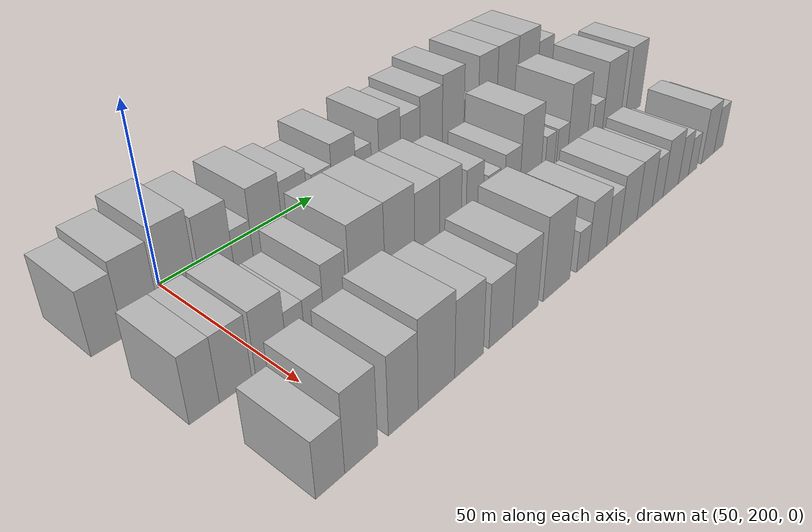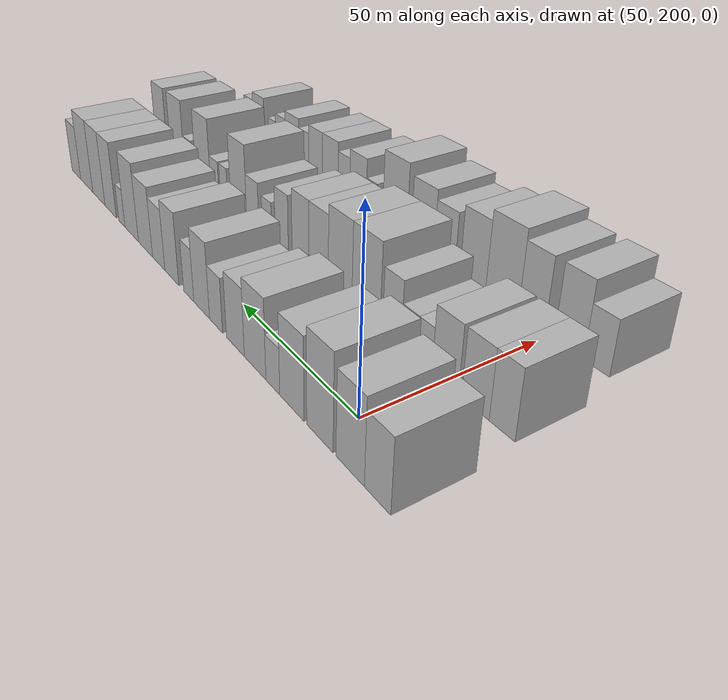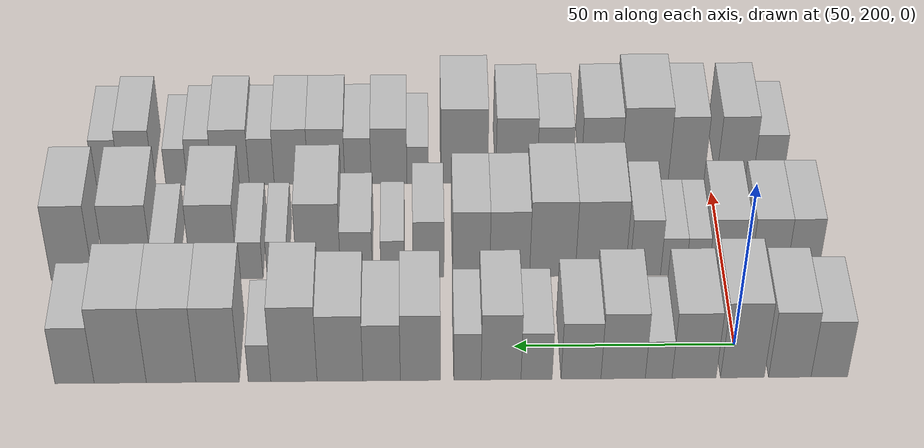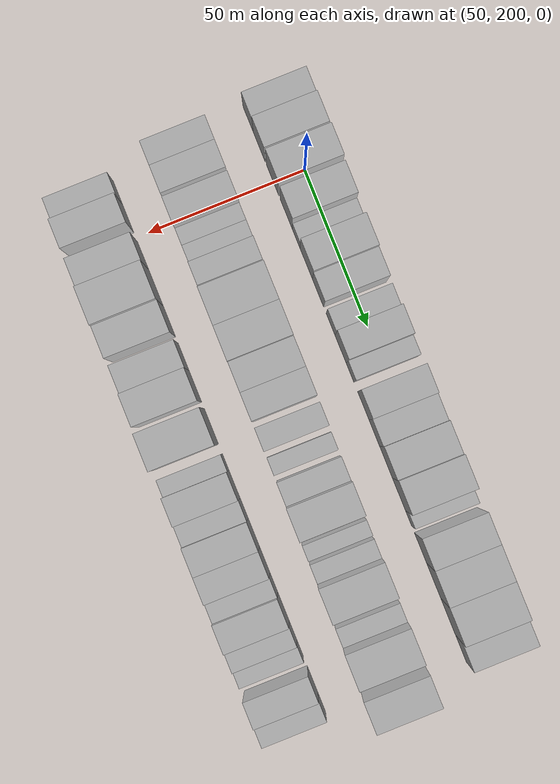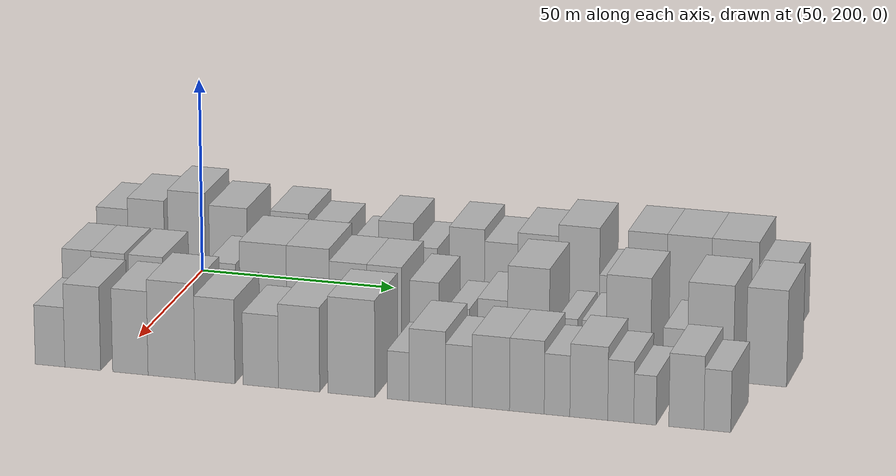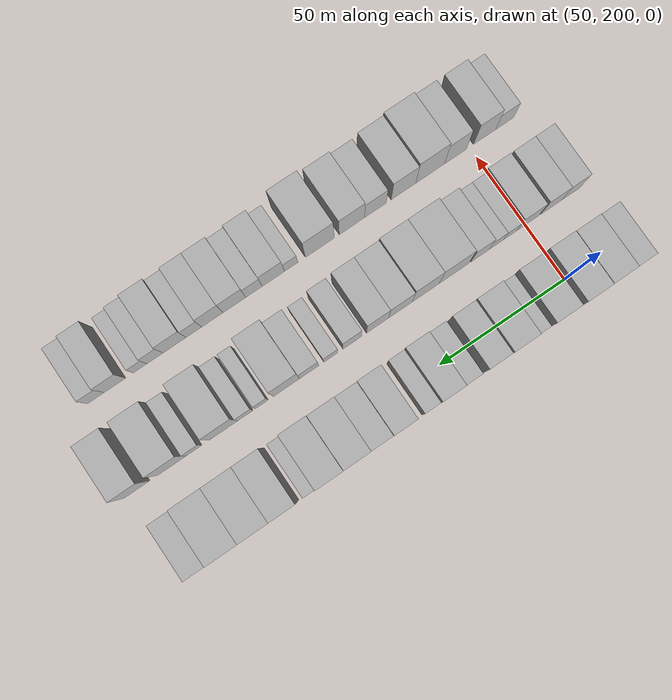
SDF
<sdf version="1.6">
 <world name="default">
  <model name="building_59">
   <static>1</static>
   <pose>50.0000 179.7902 0 0.000000 0.000000 0.000000</pose>
   <link name="link">
    <pose>0 0 9.00 0 0 0</pose>
    <collision name="collision"><geometry><box><size>20.0000 8.1824 18.0000</size></box></geometry></collision>
    <visual name="visual">
     <cast_shadows>0</cast_shadows>
     <geometry><box><size>20.0000 8.1824 18.0000</size></box></geometry>
     <material>
      <script>
       <uri>model://HANNAS_wall/materials/scripts</uri>
       <uri>model://HANNAS_wall/materials/textures</uri>
       <name>vrc/HANNAS_wall</name>
      </script>
     </material>
    </visual>
   </link>
  </model>
  <model name="building_60">
   <static>1</static>
   <pose>50.0000 188.6408 0 0.000000 0.000000 0.000000</pose>
   <link name="link">
    <pose>0 0 10.50 0 0 0</pose>
    <collision name="collision"><geometry><box><size>20.0000 9.5188 21.0000</size></box></geometry></collision>
    <visual name="visual">
     <cast_shadows>0</cast_shadows>
     <geometry><box><size>20.0000 9.5188 21.0000</size></box></geometry>
     <material>
      <script>
       <uri>model://HANNAS_wall/materials/scripts</uri>
       <uri>model://HANNAS_wall/materials/textures</uri>
       <name>vrc/HANNAS_wall</name>
      </script>
     </material>
    </visual>
   </link>
  </model>
  <model name="building_61">
   <static>1</static>
   <pose>50.0000 199.2858 0 0.000000 0.000000 0.000000</pose>
   <link name="link">
    <pose>0 0 12.00 0 0 0</pose>
    <collision name="collision"><geometry><box><size>20.0000 9.7712 24.0000</size></box></geometry></collision>
    <visual name="visual">
     <cast_shadows>0</cast_shadows>
     <geometry><box><size>20.0000 9.7712 24.0000</size></box></geometry>
     <material>
      <script>
       <uri>model://HANNAS_wall/materials/scripts</uri>
       <uri>model://HANNAS_wall/materials/textures</uri>
       <name>vrc/HANNAS_wall</name>
      </script>
     </material>
    </visual>
   </link>
  </model>
  <model name="building_62">
   <static>1</static>
   <pose>50.0000 210.1084 0 0.000000 0.000000 0.000000</pose>
   <link name="link">
    <pose>0 0 10.50 0 0 0</pose>
    <collision name="collision"><geometry><box><size>20.0000 9.8740 21.0000</size></box></geometry></collision>
    <visual name="visual">
     <cast_shadows>0</cast_shadows>
     <geometry><box><size>20.0000 9.8740 21.0000</size></box></geometry>
     <material>
      <script>
       <uri>model://HANNAS_wall/materials/scripts</uri>
       <uri>model://HANNAS_wall/materials/textures</uri>
       <name>vrc/HANNAS_wall</name>
      </script>
     </material>
    </visual>
   </link>
  </model>
  <model name="building_63">
   <static>1</static>
   <pose>50.0000 218.0400 0 0.000000 0.000000 0.000000</pose>
   <link name="link">
    <pose>0 0 6.00 0 0 0</pose>
    <collision name="collision"><geometry><box><size>20.0000 5.9892 12.0000</size></box></geometry></collision>
    <visual name="visual">
     <cast_shadows>0</cast_shadows>
     <geometry><box><size>20.0000 5.9892 12.0000</size></box></geometry>
     <material>
      <script>
       <uri>model://HANNAS_wall/materials/scripts</uri>
       <uri>model://HANNAS_wall/materials/textures</uri>
       <name>vrc/HANNAS_wall</name>
      </script>
     </material>
    </visual>
   </link>
  </model>
  <model name="building_64">
   <static>1</static>
   <pose>50.0000 225.9972 0 0.000000 0.000000 0.000000</pose>
   <link name="link">
    <pose>0 0 10.50 0 0 0</pose>
    <collision name="collision"><geometry><box><size>20.0000 9.9251 21.0000</size></box></geometry></collision>
    <visual name="visual">
     <cast_shadows>0</cast_shadows>
     <geometry><box><size>20.0000 9.9251 21.0000</size></box></geometry>
     <material>
      <script>
       <uri>model://HANNAS_wall/materials/scripts</uri>
       <uri>model://HANNAS_wall/materials/textures</uri>
       <name>vrc/HANNAS_wall</name>
      </script>
     </material>
    </visual>
   </link>
  </model>
  <model name="building_65">
   <static>1</static>
   <pose>50.0000 235.4195 0 0.000000 0.000000 0.000000</pose>
   <link name="link">
    <pose>0 0 9.00 0 0 0</pose>
    <collision name="collision"><geometry><box><size>20.0000 8.9195 18.0000</size></box></geometry></collision>
    <visual name="visual">
     <cast_shadows>0</cast_shadows>
     <geometry><box><size>20.0000 8.9195 18.0000</size></box></geometry>
     <material>
      <script>
       <uri>model://HANNAS_wall/materials/scripts</uri>
       <uri>model://HANNAS_wall/materials/textures</uri>
       <name>vrc/HANNAS_wall</name>
      </script>
     </material>
    </visual>
   </link>
  </model>
  <model name="building_66">
   <static>1</static>
   <pose>50.0000 245.3651 0 0.000000 0.000000 0.000000</pose>
   <link name="link">
    <pose>0 0 7.50 0 0 0</pose>
    <collision name="collision"><geometry><box><size>20.0000 6.9717 15.0000</size></box></geometry></collision>
    <visual name="visual">
     <cast_shadows>0</cast_shadows>
     <geometry><box><size>20.0000 6.9717 15.0000</size></box></geometry>
     <material>
      <script>
       <uri>model://HANNAS_wall/materials/scripts</uri>
       <uri>model://HANNAS_wall/materials/textures</uri>
       <name>vrc/HANNAS_wall</name>
      </script>
     </material>
    </visual>
   </link>
  </model>
  <model name="building_67">
   <static>1</static>
   <pose>50.0000 253.3187 0 0.000000 0.000000 0.000000</pose>
   <link name="link">
    <pose>0 0 10.50 0 0 0</pose>
    <collision name="collision"><geometry><box><size>20.0000 8.9354 21.0000</size></box></geometry></collision>
    <visual name="visual">
     <cast_shadows>0</cast_shadows>
     <geometry><box><size>20.0000 8.9354 21.0000</size></box></geometry>
     <material>
      <script>
       <uri>model://HANNAS_wall/materials/scripts</uri>
       <uri>model://HANNAS_wall/materials/textures</uri>
       <name>vrc/HANNAS_wall</name>
      </script>
     </material>
    </visual>
   </link>
  </model>
  <model name="building_68">
   <static>1</static>
   <pose>50.0000 260.8316 0 0.000000 0.000000 0.000000</pose>
   <link name="link">
    <pose>0 0 7.50 0 0 0</pose>
    <collision name="collision"><geometry><box><size>20.0000 6.0904 15.0000</size></box></geometry></collision>
    <visual name="visual">
     <cast_shadows>0</cast_shadows>
     <geometry><box><size>20.0000 6.0904 15.0000</size></box></geometry>
     <material>
      <script>
       <uri>model://HANNAS_wall/materials/scripts</uri>
       <uri>model://HANNAS_wall/materials/textures</uri>
       <name>vrc/HANNAS_wall</name>
      </script>
     </material>
    </visual>
   </link>
  </model>
  <model name="building_69">
   <static>1</static>
   <pose>50.0000 271.3402 0 0.000000 0.000000 0.000000</pose>
   <link name="link">
    <pose>0 0 10.50 0 0 0</pose>
    <collision name="collision"><geometry><box><size>20.0000 8.9268 21.0000</size></box></geometry></collision>
    <visual name="visual">
     <cast_shadows>0</cast_shadows>
     <geometry><box><size>20.0000 8.9268 21.0000</size></box></geometry>
     <material>
      <script>
       <uri>model://HANNAS_wall/materials/scripts</uri>
       <uri>model://HANNAS_wall/materials/textures</uri>
       <name>vrc/HANNAS_wall</name>
      </script>
     </material>
    </visual>
   </link>
  </model>
  <model name="building_70">
   <static>1</static>
   <pose>50.0000 279.9885 0 0.000000 0.000000 0.000000</pose>
   <link name="link">
    <pose>0 0 9.00 0 0 0</pose>
    <collision name="collision"><geometry><box><size>20.0000 8.3698 18.0000</size></box></geometry></collision>
    <visual name="visual">
     <cast_shadows>0</cast_shadows>
     <geometry><box><size>20.0000 8.3698 18.0000</size></box></geometry>
     <material>
      <script>
       <uri>model://HANNAS_wall/materials/scripts</uri>
       <uri>model://HANNAS_wall/materials/textures</uri>
       <name>vrc/HANNAS_wall</name>
      </script>
     </material>
    </visual>
   </link>
  </model>
  <model name="building_71">
   <static>1</static>
   <pose>50.0000 289.2842 0 0.000000 0.000000 0.000000</pose>
   <link name="link">
    <pose>0 0 10.50 0 0 0</pose>
    <collision name="collision"><geometry><box><size>20.0000 10.2215 21.0000</size></box></geometry></collision>
    <visual name="visual">
     <cast_shadows>0</cast_shadows>
     <geometry><box><size>20.0000 10.2215 21.0000</size></box></geometry>
     <material>
      <script>
       <uri>model://HANNAS_wall/materials/scripts</uri>
       <uri>model://HANNAS_wall/materials/textures</uri>
       <name>vrc/HANNAS_wall</name>
      </script>
     </material>
    </visual>
   </link>
  </model>
  <model name="building_72">
   <static>1</static>
   <pose>50.0000 299.5635 0 0.000000 0.000000 0.000000</pose>
   <link name="link">
    <pose>0 0 12.00 0 0 0</pose>
    <collision name="collision"><geometry><box><size>20.0000 10.3371 24.0000</size></box></geometry></collision>
    <visual name="visual">
     <cast_shadows>0</cast_shadows>
     <geometry><box><size>20.0000 10.3371 24.0000</size></box></geometry>
     <material>
      <script>
       <uri>model://HANNAS_wall/materials/scripts</uri>
       <uri>model://HANNAS_wall/materials/textures</uri>
       <name>vrc/HANNAS_wall</name>
      </script>
     </material>
    </visual>
   </link>
  </model>
  <model name="building_73">
   <static>1</static>
   <pose>50.0000 307.2502 0 0.000000 0.000000 0.000000</pose>
   <link name="link">
    <pose>0 0 6.00 0 0 0</pose>
    <collision name="collision"><geometry><box><size>20.0000 5.0363 12.0000</size></box></geometry></collision>
    <visual name="visual">
     <cast_shadows>0</cast_shadows>
     <geometry><box><size>20.0000 5.0363 12.0000</size></box></geometry>
     <material>
      <script>
       <uri>model://HANNAS_wall/materials/scripts</uri>
       <uri>model://HANNAS_wall/materials/textures</uri>
       <name>vrc/HANNAS_wall</name>
      </script>
     </material>
    </visual>
   </link>
  </model>
  <model name="building_74">
   <static>1</static>
   <pose>50.0000 316.6212 0 0.000000 0.000000 0.000000</pose>
   <link name="link">
    <pose>0 0 12.00 0 0 0</pose>
    <collision name="collision"><geometry><box><size>20.0000 9.7057 24.0000</size></box></geometry></collision>
    <visual name="visual">
     <cast_shadows>0</cast_shadows>
     <geometry><box><size>20.0000 9.7057 24.0000</size></box></geometry>
     <material>
      <script>
       <uri>model://HANNAS_wall/materials/scripts</uri>
       <uri>model://HANNAS_wall/materials/textures</uri>
       <name>vrc/HANNAS_wall</name>
      </script>
     </material>
    </visual>
   </link>
  </model>
  <model name="building_75">
   <static>1</static>
   <pose>50.0000 326.9900 0 0.000000 0.000000 0.000000</pose>
   <link name="link">
    <pose>0 0 12.00 0 0 0</pose>
    <collision name="collision"><geometry><box><size>20.0000 11.0320 24.0000</size></box></geometry></collision>
    <visual name="visual">
     <cast_shadows>0</cast_shadows>
     <geometry><box><size>20.0000 11.0320 24.0000</size></box></geometry>
     <material>
      <script>
       <uri>model://HANNAS_wall/materials/scripts</uri>
       <uri>model://HANNAS_wall/materials/textures</uri>
       <name>vrc/HANNAS_wall</name>
      </script>
     </material>
    </visual>
   </link>
  </model>
  <model name="building_76">
   <static>1</static>
   <pose>50.0000 338.3244 0 0.000000 0.000000 0.000000</pose>
   <link name="link">
    <pose>0 0 12.00 0 0 0</pose>
    <collision name="collision"><geometry><box><size>20.0000 11.6367 24.0000</size></box></geometry></collision>
    <visual name="visual">
     <cast_shadows>0</cast_shadows>
     <geometry><box><size>20.0000 11.6367 24.0000</size></box></geometry>
     <material>
      <script>
       <uri>model://HANNAS_wall/materials/scripts</uri>
       <uri>model://HANNAS_wall/materials/textures</uri>
       <name>vrc/HANNAS_wall</name>
      </script>
     </material>
    </visual>
   </link>
  </model>
  <model name="building_77">
   <static>1</static>
   <pose>50.0000 348.5175 0 0.000000 0.000000 0.000000</pose>
   <link name="link">
    <pose>0 0 9.00 0 0 0</pose>
    <collision name="collision"><geometry><box><size>20.0000 8.7497 18.0000</size></box></geometry></collision>
    <visual name="visual">
     <cast_shadows>0</cast_shadows>
     <geometry><box><size>20.0000 8.7497 18.0000</size></box></geometry>
     <material>
      <script>
       <uri>model://HANNAS_wall/materials/scripts</uri>
       <uri>model://HANNAS_wall/materials/textures</uri>
       <name>vrc/HANNAS_wall</name>
      </script>
     </material>
    </visual>
   </link>
  </model>
  <model name="building_134">
   <static>1</static>
   <pose>82.0000 181.5643 0 0.000000 0.000000 0.000000</pose>
   <link name="link">
    <pose>0 0 9.00 0 0 0</pose>
    <collision name="collision"><geometry><box><size>20.0000 7.4783 18.0000</size></box></geometry></collision>
    <visual name="visual">
     <cast_shadows>0</cast_shadows>
     <geometry><box><size>20.0000 7.4783 18.0000</size></box></geometry>
     <material>
      <script>
       <uri>model://HANNAS_wall/materials/scripts</uri>
       <uri>model://HANNAS_wall/materials/textures</uri>
       <name>vrc/HANNAS_wall</name>
      </script>
     </material>
    </visual>
   </link>
  </model>
  <model name="building_135">
   <static>1</static>
   <pose>82.0000 189.5774 0 0.000000 0.000000 0.000000</pose>
   <link name="link">
    <pose>0 0 9.00 0 0 0</pose>
    <collision name="collision"><geometry><box><size>20.0000 8.5478 18.0000</size></box></geometry></collision>
    <visual name="visual">
     <cast_shadows>0</cast_shadows>
     <geometry><box><size>20.0000 8.5478 18.0000</size></box></geometry>
     <material>
      <script>
       <uri>model://HANNAS_wall/materials/scripts</uri>
       <uri>model://HANNAS_wall/materials/textures</uri>
       <name>vrc/HANNAS_wall</name>
      </script>
     </material>
    </visual>
   </link>
  </model>
  <model name="building_136">
   <static>1</static>
   <pose>82.0000 199.2489 0 0.000000 0.000000 0.000000</pose>
   <link name="link">
    <pose>0 0 9.00 0 0 0</pose>
    <collision name="collision"><geometry><box><size>20.0000 8.7950 18.0000</size></box></geometry></collision>
    <visual name="visual">
     <cast_shadows>0</cast_shadows>
     <geometry><box><size>20.0000 8.7950 18.0000</size></box></geometry>
     <material>
      <script>
       <uri>model://HANNAS_wall/materials/scripts</uri>
       <uri>model://HANNAS_wall/materials/textures</uri>
       <name>vrc/HANNAS_wall</name>
      </script>
     </material>
    </visual>
   </link>
  </model>
  <model name="building_137">
   <static>1</static>
   <pose>82.0000 206.3078 0 0.000000 0.000000 0.000000</pose>
   <link name="link">
    <pose>0 0 6.00 0 0 0</pose>
    <collision name="collision"><geometry><box><size>20.0000 5.3228 12.0000</size></box></geometry></collision>
    <visual name="visual">
     <cast_shadows>0</cast_shadows>
     <geometry><box><size>20.0000 5.3228 12.0000</size></box></geometry>
     <material>
      <script>
       <uri>model://HANNAS_wall/materials/scripts</uri>
       <uri>model://HANNAS_wall/materials/textures</uri>
       <name>vrc/HANNAS_wall</name>
      </script>
     </material>
    </visual>
   </link>
  </model>
  <model name="building_138">
   <static>1</static>
   <pose>82.0000 211.9182 0 0.000000 0.000000 0.000000</pose>
   <link name="link">
    <pose>0 0 6.00 0 0 0</pose>
    <collision name="collision"><geometry><box><size>20.0000 5.8979 12.0000</size></box></geometry></collision>
    <visual name="visual">
     <cast_shadows>0</cast_shadows>
     <geometry><box><size>20.0000 5.8979 12.0000</size></box></geometry>
     <material>
      <script>
       <uri>model://HANNAS_wall/materials/scripts</uri>
       <uri>model://HANNAS_wall/materials/textures</uri>
       <name>vrc/HANNAS_wall</name>
      </script>
     </material>
    </visual>
   </link>
  </model>
  <model name="building_139">
   <static>1</static>
   <pose>82.0000 218.4886 0 0.000000 0.000000 0.000000</pose>
   <link name="link">
    <pose>0 0 9.00 0 0 0</pose>
    <collision name="collision"><geometry><box><size>20.0000 7.2429 18.0000</size></box></geometry></collision>
    <visual name="visual">
     <cast_shadows>0</cast_shadows>
     <geometry><box><size>20.0000 7.2429 18.0000</size></box></geometry>
     <material>
      <script>
       <uri>model://HANNAS_wall/materials/scripts</uri>
       <uri>model://HANNAS_wall/materials/textures</uri>
       <name>vrc/HANNAS_wall</name>
      </script>
     </material>
    </visual>
   </link>
  </model>
  <model name="building_140">
   <static>1</static>
   <pose>82.0000 228.9986 0 0.000000 0.000000 0.000000</pose>
   <link name="link">
    <pose>0 0 12.00 0 0 0</pose>
    <collision name="collision"><geometry><box><size>20.0000 11.7772 24.0000</size></box></geometry></collision>
    <visual name="visual">
     <cast_shadows>0</cast_shadows>
     <geometry><box><size>20.0000 11.7772 24.0000</size></box></geometry>
     <material>
      <script>
       <uri>model://HANNAS_wall/materials/scripts</uri>
       <uri>model://HANNAS_wall/materials/textures</uri>
       <name>vrc/HANNAS_wall</name>
      </script>
     </material>
    </visual>
   </link>
  </model>
  <model name="building_141">
   <static>1</static>
   <pose>82.0000 240.2422 0 0.000000 0.000000 0.000000</pose>
   <link name="link">
    <pose>0 0 12.00 0 0 0</pose>
    <collision name="collision"><geometry><box><size>20.0000 10.7101 24.0000</size></box></geometry></collision>
    <visual name="visual">
     <cast_shadows>0</cast_shadows>
     <geometry><box><size>20.0000 10.7101 24.0000</size></box></geometry>
     <material>
      <script>
       <uri>model://HANNAS_wall/materials/scripts</uri>
       <uri>model://HANNAS_wall/materials/textures</uri>
       <name>vrc/HANNAS_wall</name>
      </script>
     </material>
    </visual>
   </link>
  </model>
  <model name="building_142">
   <static>1</static>
   <pose>82.0000 250.2687 0 0.000000 0.000000 0.000000</pose>
   <link name="link">
    <pose>0 0 10.50 0 0 0</pose>
    <collision name="collision"><geometry><box><size>20.0000 9.3429 21.0000</size></box></geometry></collision>
    <visual name="visual">
     <cast_shadows>0</cast_shadows>
     <geometry><box><size>20.0000 9.3429 21.0000</size></box></geometry>
     <material>
      <script>
       <uri>model://HANNAS_wall/materials/scripts</uri>
       <uri>model://HANNAS_wall/materials/textures</uri>
       <name>vrc/HANNAS_wall</name>
      </script>
     </material>
    </visual>
   </link>
  </model>
  <model name="building_143">
   <static>1</static>
   <pose>82.0000 259.2941 0 0.000000 0.000000 0.000000</pose>
   <link name="link">
    <pose>0 0 10.50 0 0 0</pose>
    <collision name="collision"><geometry><box><size>20.0000 8.7077 21.0000</size></box></geometry></collision>
    <visual name="visual">
     <cast_shadows>0</cast_shadows>
     <geometry><box><size>20.0000 8.7077 21.0000</size></box></geometry>
     <material>
      <script>
       <uri>model://HANNAS_wall/materials/scripts</uri>
       <uri>model://HANNAS_wall/materials/textures</uri>
       <name>vrc/HANNAS_wall</name>
      </script>
     </material>
    </visual>
   </link>
  </model>
  <model name="building_144">
   <static>1</static>
   <pose>82.0000 269.2672 0 0.000000 0.000000 0.000000</pose>
   <link name="link">
    <pose>0 0 9.00 0 0 0</pose>
    <collision name="collision"><geometry><box><size>20.0000 7.2385 18.0000</size></box></geometry></collision>
    <visual name="visual">
     <cast_shadows>0</cast_shadows>
     <geometry><box><size>20.0000 7.2385 18.0000</size></box></geometry>
     <material>
      <script>
       <uri>model://HANNAS_wall/materials/scripts</uri>
       <uri>model://HANNAS_wall/materials/textures</uri>
       <name>vrc/HANNAS_wall</name>
      </script>
     </material>
    </visual>
   </link>
  </model>
  <model name="building_145">
   <static>1</static>
   <pose>82.0000 277.6473 0 0.000000 0.000000 0.000000</pose>
   <link name="link">
    <pose>0 0 6.00 0 0 0</pose>
    <collision name="collision"><geometry><box><size>20.0000 5.5218 12.0000</size></box></geometry></collision>
    <visual name="visual">
     <cast_shadows>0</cast_shadows>
     <geometry><box><size>20.0000 5.5218 12.0000</size></box></geometry>
     <material>
      <script>
       <uri>model://HANNAS_wall/materials/scripts</uri>
       <uri>model://HANNAS_wall/materials/textures</uri>
       <name>vrc/HANNAS_wall</name>
      </script>
     </material>
    </visual>
   </link>
  </model>
  <model name="building_146">
   <static>1</static>
   <pose>82.0000 286.1262 0 0.000000 0.000000 0.000000</pose>
   <link name="link">
    <pose>0 0 7.50 0 0 0</pose>
    <collision name="collision"><geometry><box><size>20.0000 7.4360 15.0000</size></box></geometry></collision>
    <visual name="visual">
     <cast_shadows>0</cast_shadows>
     <geometry><box><size>20.0000 7.4360 15.0000</size></box></geometry>
     <material>
      <script>
       <uri>model://HANNAS_wall/materials/scripts</uri>
       <uri>model://HANNAS_wall/materials/textures</uri>
       <name>vrc/HANNAS_wall</name>
      </script>
     </material>
    </visual>
   </link>
  </model>
  <model name="building_147">
   <static>1</static>
   <pose>82.0000 294.9638 0 0.000000 0.000000 0.000000</pose>
   <link name="link">
    <pose>0 0 12.00 0 0 0</pose>
    <collision name="collision"><geometry><box><size>20.0000 10.2392 24.0000</size></box></geometry></collision>
    <visual name="visual">
     <cast_shadows>0</cast_shadows>
     <geometry><box><size>20.0000 10.2392 24.0000</size></box></geometry>
     <material>
      <script>
       <uri>model://HANNAS_wall/materials/scripts</uri>
       <uri>model://HANNAS_wall/materials/textures</uri>
       <name>vrc/HANNAS_wall</name>
      </script>
     </material>
    </visual>
   </link>
  </model>
  <model name="building_148">
   <static>1</static>
   <pose>82.0000 304.5478 0 0.000000 0.000000 0.000000</pose>
   <link name="link">
    <pose>0 0 6.00 0 0 0</pose>
    <collision name="collision"><geometry><box><size>20.0000 4.9287 12.0000</size></box></geometry></collision>
    <visual name="visual">
     <cast_shadows>0</cast_shadows>
     <geometry><box><size>20.0000 4.9287 12.0000</size></box></geometry>
     <material>
      <script>
       <uri>model://HANNAS_wall/materials/scripts</uri>
       <uri>model://HANNAS_wall/materials/textures</uri>
       <name>vrc/HANNAS_wall</name>
      </script>
     </material>
    </visual>
   </link>
  </model>
  <model name="building_149">
   <static>1</static>
   <pose>82.0000 310.9711 0 0.000000 0.000000 0.000000</pose>
   <link name="link">
    <pose>0 0 6.00 0 0 0</pose>
    <collision name="collision"><geometry><box><size>20.0000 5.9180 12.0000</size></box></geometry></collision>
    <visual name="visual">
     <cast_shadows>0</cast_shadows>
     <geometry><box><size>20.0000 5.9180 12.0000</size></box></geometry>
     <material>
      <script>
       <uri>model://HANNAS_wall/materials/scripts</uri>
       <uri>model://HANNAS_wall/materials/textures</uri>
       <name>vrc/HANNAS_wall</name>
      </script>
     </material>
    </visual>
   </link>
  </model>
  <model name="building_150">
   <static>1</static>
   <pose>82.0000 319.3558 0 0.000000 0.000000 0.000000</pose>
   <link name="link">
    <pose>0 0 12.00 0 0 0</pose>
    <collision name="collision"><geometry><box><size>20.0000 10.8512 24.0000</size></box></geometry></collision>
    <visual name="visual">
     <cast_shadows>0</cast_shadows>
     <geometry><box><size>20.0000 10.8512 24.0000</size></box></geometry>
     <material>
      <script>
       <uri>model://HANNAS_wall/materials/scripts</uri>
       <uri>model://HANNAS_wall/materials/textures</uri>
       <name>vrc/HANNAS_wall</name>
      </script>
     </material>
    </visual>
   </link>
  </model>
  <model name="building_151">
   <static>1</static>
   <pose>82.0000 330.7257 0 0.000000 0.000000 0.000000</pose>
   <link name="link">
    <pose>0 0 6.00 0 0 0</pose>
    <collision name="collision"><geometry><box><size>20.0000 5.8886 12.0000</size></box></geometry></collision>
    <visual name="visual">
     <cast_shadows>0</cast_shadows>
     <geometry><box><size>20.0000 5.8886 12.0000</size></box></geometry>
     <material>
      <script>
       <uri>model://HANNAS_wall/materials/scripts</uri>
       <uri>model://HANNAS_wall/materials/textures</uri>
       <name>vrc/HANNAS_wall</name>
      </script>
     </material>
    </visual>
   </link>
  </model>
  <model name="building_152">
   <static>1</static>
   <pose>82.0000 339.2134 0 0.000000 0.000000 0.000000</pose>
   <link name="link">
    <pose>0 0 12.00 0 0 0</pose>
    <collision name="collision"><geometry><box><size>20.0000 11.0869 24.0000</size></box></geometry></collision>
    <visual name="visual">
     <cast_shadows>0</cast_shadows>
     <geometry><box><size>20.0000 11.0869 24.0000</size></box></geometry>
     <material>
      <script>
       <uri>model://HANNAS_wall/materials/scripts</uri>
       <uri>model://HANNAS_wall/materials/textures</uri>
       <name>vrc/HANNAS_wall</name>
      </script>
     </material>
    </visual>
   </link>
  </model>
  <model name="building_153">
   <static>1</static>
   <pose>82.0000 352.6591 0 0.000000 0.000000 0.000000</pose>
   <link name="link">
    <pose>0 0 12.00 0 0 0</pose>
    <collision name="collision"><geometry><box><size>20.0000 9.8045 24.0000</size></box></geometry></collision>
    <visual name="visual">
     <cast_shadows>0</cast_shadows>
     <geometry><box><size>20.0000 9.8045 24.0000</size></box></geometry>
     <material>
      <script>
       <uri>model://HANNAS_wall/materials/scripts</uri>
       <uri>model://HANNAS_wall/materials/textures</uri>
       <name>vrc/HANNAS_wall</name>
      </script>
     </material>
    </visual>
   </link>
  </model>
  <model name="building_214">
   <static>1</static>
   <pose>114.0000 185.6969 0 0.000000 0.000000 0.000000</pose>
   <link name="link">
    <pose>0 0 7.50 0 0 0</pose>
    <collision name="collision"><geometry><box><size>20.0000 7.4392 15.0000</size></box></geometry></collision>
    <visual name="visual">
     <cast_shadows>0</cast_shadows>
     <geometry><box><size>20.0000 7.4392 15.0000</size></box></geometry>
     <material>
      <script>
       <uri>model://HANNAS_wall/materials/scripts</uri>
       <uri>model://HANNAS_wall/materials/textures</uri>
       <name>vrc/HANNAS_wall</name>
      </script>
     </material>
    </visual>
   </link>
  </model>
  <model name="building_215">
   <static>1</static>
   <pose>114.0000 193.9093 0 0.000000 0.000000 0.000000</pose>
   <link name="link">
    <pose>0 0 10.50 0 0 0</pose>
    <collision name="collision"><geometry><box><size>20.0000 8.9856 21.0000</size></box></geometry></collision>
    <visual name="visual">
     <cast_shadows>0</cast_shadows>
     <geometry><box><size>20.0000 8.9856 21.0000</size></box></geometry>
     <material>
      <script>
       <uri>model://HANNAS_wall/materials/scripts</uri>
       <uri>model://HANNAS_wall/materials/textures</uri>
       <name>vrc/HANNAS_wall</name>
      </script>
     </material>
    </visual>
   </link>
  </model>
  <model name="building_216">
   <static>1</static>
   <pose>114.0000 205.8192 0 0.000000 0.000000 0.000000</pose>
   <link name="link">
    <pose>0 0 10.50 0 0 0</pose>
    <collision name="collision"><geometry><box><size>20.0000 8.8342 21.0000</size></box></geometry></collision>
    <visual name="visual">
     <cast_shadows>0</cast_shadows>
     <geometry><box><size>20.0000 8.8342 21.0000</size></box></geometry>
     <material>
      <script>
       <uri>model://HANNAS_wall/materials/scripts</uri>
       <uri>model://HANNAS_wall/materials/textures</uri>
       <name>vrc/HANNAS_wall</name>
      </script>
     </material>
    </visual>
   </link>
  </model>
  <model name="building_217">
   <static>1</static>
   <pose>114.0000 216.0576 0 0.000000 0.000000 0.000000</pose>
   <link name="link">
    <pose>0 0 12.00 0 0 0</pose>
    <collision name="collision"><geometry><box><size>20.0000 11.6426 24.0000</size></box></geometry></collision>
    <visual name="visual">
     <cast_shadows>0</cast_shadows>
     <geometry><box><size>20.0000 11.6426 24.0000</size></box></geometry>
     <material>
      <script>
       <uri>model://HANNAS_wall/materials/scripts</uri>
       <uri>model://HANNAS_wall/materials/textures</uri>
       <name>vrc/HANNAS_wall</name>
      </script>
     </material>
    </visual>
   </link>
  </model>
  <model name="building_218">
   <static>1</static>
   <pose>114.0000 226.8198 0 0.000000 0.000000 0.000000</pose>
   <link name="link">
    <pose>0 0 10.50 0 0 0</pose>
    <collision name="collision"><geometry><box><size>20.0000 9.8817 21.0000</size></box></geometry></collision>
    <visual name="visual">
     <cast_shadows>0</cast_shadows>
     <geometry><box><size>20.0000 9.8817 21.0000</size></box></geometry>
     <material>
      <script>
       <uri>model://HANNAS_wall/materials/scripts</uri>
       <uri>model://HANNAS_wall/materials/textures</uri>
       <name>vrc/HANNAS_wall</name>
      </script>
     </material>
    </visual>
   </link>
  </model>
  <model name="building_219">
   <static>1</static>
   <pose>114.0000 238.1145 0 0.000000 0.000000 0.000000</pose>
   <link name="link">
    <pose>0 0 9.00 0 0 0</pose>
    <collision name="collision"><geometry><box><size>20.0000 8.7077 18.0000</size></box></geometry></collision>
    <visual name="visual">
     <cast_shadows>0</cast_shadows>
     <geometry><box><size>20.0000 8.7077 18.0000</size></box></geometry>
     <material>
      <script>
       <uri>model://HANNAS_wall/materials/scripts</uri>
       <uri>model://HANNAS_wall/materials/textures</uri>
       <name>vrc/HANNAS_wall</name>
      </script>
     </material>
    </visual>
   </link>
  </model>
  <model name="building_220">
   <static>1</static>
   <pose>114.0000 247.5190 0 0.000000 0.000000 0.000000</pose>
   <link name="link">
    <pose>0 0 10.50 0 0 0</pose>
    <collision name="collision"><geometry><box><size>20.0000 10.1014 21.0000</size></box></geometry></collision>
    <visual name="visual">
     <cast_shadows>0</cast_shadows>
     <geometry><box><size>20.0000 10.1014 21.0000</size></box></geometry>
     <material>
      <script>
       <uri>model://HANNAS_wall/materials/scripts</uri>
       <uri>model://HANNAS_wall/materials/textures</uri>
       <name>vrc/HANNAS_wall</name>
      </script>
     </material>
    </visual>
   </link>
  </model>
  <model name="building_221">
   <static>1</static>
   <pose>114.0000 260.2943 0 0.000000 0.000000 0.000000</pose>
   <link name="link">
    <pose>0 0 12.00 0 0 0</pose>
    <collision name="collision"><geometry><box><size>20.0000 11.4493 24.0000</size></box></geometry></collision>
    <visual name="visual">
     <cast_shadows>0</cast_shadows>
     <geometry><box><size>20.0000 11.4493 24.0000</size></box></geometry>
     <material>
      <script>
       <uri>model://HANNAS_wall/materials/scripts</uri>
       <uri>model://HANNAS_wall/materials/textures</uri>
       <name>vrc/HANNAS_wall</name>
      </script>
     </material>
    </visual>
   </link>
  </model>
  <model name="building_222">
   <static>1</static>
   <pose>114.0000 271.6622 0 0.000000 0.000000 0.000000</pose>
   <link name="link">
    <pose>0 0 6.00 0 0 0</pose>
    <collision name="collision"><geometry><box><size>20.0000 5.2865 12.0000</size></box></geometry></collision>
    <visual name="visual">
     <cast_shadows>0</cast_shadows>
     <geometry><box><size>20.0000 5.2865 12.0000</size></box></geometry>
     <material>
      <script>
       <uri>model://HANNAS_wall/materials/scripts</uri>
       <uri>model://HANNAS_wall/materials/textures</uri>
       <name>vrc/HANNAS_wall</name>
      </script>
     </material>
    </visual>
   </link>
  </model>
  <model name="building_223">
   <static>1</static>
   <pose>114.0000 278.6906 0 0.000000 0.000000 0.000000</pose>
   <link name="link">
    <pose>0 0 9.00 0 0 0</pose>
    <collision name="collision"><geometry><box><size>20.0000 8.7703 18.0000</size></box></geometry></collision>
    <visual name="visual">
     <cast_shadows>0</cast_shadows>
     <geometry><box><size>20.0000 8.7703 18.0000</size></box></geometry>
     <material>
      <script>
       <uri>model://HANNAS_wall/materials/scripts</uri>
       <uri>model://HANNAS_wall/materials/textures</uri>
       <name>vrc/HANNAS_wall</name>
      </script>
     </material>
    </visual>
   </link>
  </model>
  <model name="building_224">
   <static>1</static>
   <pose>114.0000 286.3008 0 0.000000 0.000000 0.000000</pose>
   <link name="link">
    <pose>0 0 7.50 0 0 0</pose>
    <collision name="collision"><geometry><box><size>20.0000 6.4502 15.0000</size></box></geometry></collision>
    <visual name="visual">
     <cast_shadows>0</cast_shadows>
     <geometry><box><size>20.0000 6.4502 15.0000</size></box></geometry>
     <material>
      <script>
       <uri>model://HANNAS_wall/materials/scripts</uri>
       <uri>model://HANNAS_wall/materials/textures</uri>
       <name>vrc/HANNAS_wall</name>
      </script>
     </material>
    </visual>
   </link>
  </model>
  <model name="building_225">
   <static>1</static>
   <pose>114.0000 294.0180 0 0.000000 0.000000 0.000000</pose>
   <link name="link">
    <pose>0 0 9.00 0 0 0</pose>
    <collision name="collision"><geometry><box><size>20.0000 8.9842 18.0000</size></box></geometry></collision>
    <visual name="visual">
     <cast_shadows>0</cast_shadows>
     <geometry><box><size>20.0000 8.9842 18.0000</size></box></geometry>
     <material>
      <script>
       <uri>model://HANNAS_wall/materials/scripts</uri>
       <uri>model://HANNAS_wall/materials/textures</uri>
       <name>vrc/HANNAS_wall</name>
      </script>
     </material>
    </visual>
   </link>
  </model>
  <model name="building_226">
   <static>1</static>
   <pose>114.0000 302.6625 0 0.000000 0.000000 0.000000</pose>
   <link name="link">
    <pose>0 0 9.00 0 0 0</pose>
    <collision name="collision"><geometry><box><size>20.0000 8.3049 18.0000</size></box></geometry></collision>
    <visual name="visual">
     <cast_shadows>0</cast_shadows>
     <geometry><box><size>20.0000 8.3049 18.0000</size></box></geometry>
     <material>
      <script>
       <uri>model://HANNAS_wall/materials/scripts</uri>
       <uri>model://HANNAS_wall/materials/textures</uri>
       <name>vrc/HANNAS_wall</name>
      </script>
     </material>
    </visual>
   </link>
  </model>
  <model name="building_227">
   <static>1</static>
   <pose>114.0000 309.8687 0 0.000000 0.000000 0.000000</pose>
   <link name="link">
    <pose>0 0 7.50 0 0 0</pose>
    <collision name="collision"><geometry><box><size>20.0000 6.1074 15.0000</size></box></geometry></collision>
    <visual name="visual">
     <cast_shadows>0</cast_shadows>
     <geometry><box><size>20.0000 6.1074 15.0000</size></box></geometry>
     <material>
      <script>
       <uri>model://HANNAS_wall/materials/scripts</uri>
       <uri>model://HANNAS_wall/materials/textures</uri>
       <name>vrc/HANNAS_wall</name>
      </script>
     </material>
    </visual>
   </link>
  </model>
  <model name="building_228">
   <static>1</static>
   <pose>114.0000 317.4164 0 0.000000 0.000000 0.000000</pose>
   <link name="link">
    <pose>0 0 9.00 0 0 0</pose>
    <collision name="collision"><geometry><box><size>20.0000 8.9881 18.0000</size></box></geometry></collision>
    <visual name="visual">
     <cast_shadows>0</cast_shadows>
     <geometry><box><size>20.0000 8.9881 18.0000</size></box></geometry>
     <material>
      <script>
       <uri>model://HANNAS_wall/materials/scripts</uri>
       <uri>model://HANNAS_wall/materials/textures</uri>
       <name>vrc/HANNAS_wall</name>
      </script>
     </material>
    </visual>
   </link>
  </model>
  <model name="building_229">
   <static>1</static>
   <pose>114.0000 325.0004 0 0.000000 0.000000 0.000000</pose>
   <link name="link">
    <pose>0 0 7.50 0 0 0</pose>
    <collision name="collision"><geometry><box><size>20.0000 6.1799 15.0000</size></box></geometry></collision>
    <visual name="visual">
     <cast_shadows>0</cast_shadows>
     <geometry><box><size>20.0000 6.1799 15.0000</size></box></geometry>
     <material>
      <script>
       <uri>model://HANNAS_wall/materials/scripts</uri>
       <uri>model://HANNAS_wall/materials/textures</uri>
       <name>vrc/HANNAS_wall</name>
      </script>
     </material>
    </visual>
   </link>
  </model>
  <model name="building_230">
   <static>1</static>
   <pose>114.0000 330.7148 0 0.000000 0.000000 0.000000</pose>
   <link name="link">
    <pose>0 0 6.00 0 0 0</pose>
    <collision name="collision"><geometry><box><size>20.0000 5.2489 12.0000</size></box></geometry></collision>
    <visual name="visual">
     <cast_shadows>0</cast_shadows>
     <geometry><box><size>20.0000 5.2489 12.0000</size></box></geometry>
     <material>
      <script>
       <uri>model://HANNAS_wall/materials/scripts</uri>
       <uri>model://HANNAS_wall/materials/textures</uri>
       <name>vrc/HANNAS_wall</name>
      </script>
     </material>
    </visual>
   </link>
  </model>
  <model name="building_231">
   <static>1</static>
   <pose>114.0000 340.4619 0 0.000000 0.000000 0.000000</pose>
   <link name="link">
    <pose>0 0 9.00 0 0 0</pose>
    <collision name="collision"><geometry><box><size>20.0000 8.2452 18.0000</size></box></geometry></collision>
    <visual name="visual">
     <cast_shadows>0</cast_shadows>
     <geometry><box><size>20.0000 8.2452 18.0000</size></box></geometry>
     <material>
      <script>
       <uri>model://HANNAS_wall/materials/scripts</uri>
       <uri>model://HANNAS_wall/materials/textures</uri>
       <name>vrc/HANNAS_wall</name>
      </script>
     </material>
    </visual>
   </link>
  </model>
  <model name="building_232">
   <static>1</static>
   <pose>114.0000 347.7411 0 0.000000 0.000000 0.000000</pose>
   <link name="link">
    <pose>0 0 7.50 0 0 0</pose>
    <collision name="collision"><geometry><box><size>20.0000 6.3133 15.0000</size></box></geometry></collision>
    <visual name="visual">
     <cast_shadows>0</cast_shadows>
     <geometry><box><size>20.0000 6.3133 15.0000</size></box></geometry>
     <material>
      <script>
       <uri>model://HANNAS_wall/materials/scripts</uri>
       <uri>model://HANNAS_wall/materials/textures</uri>
       <name>vrc/HANNAS_wall</name>
      </script>
     </material>
    </visual>
   </link>
  </model>
 </world>
</sdf>
